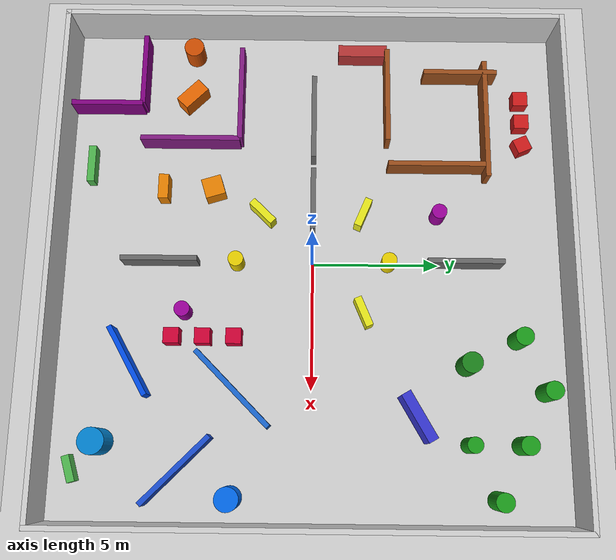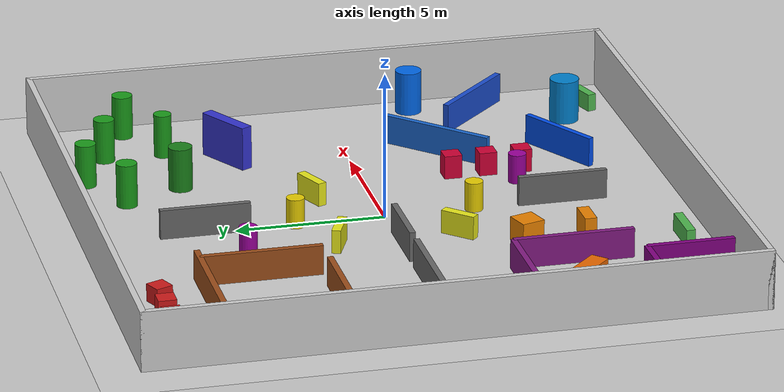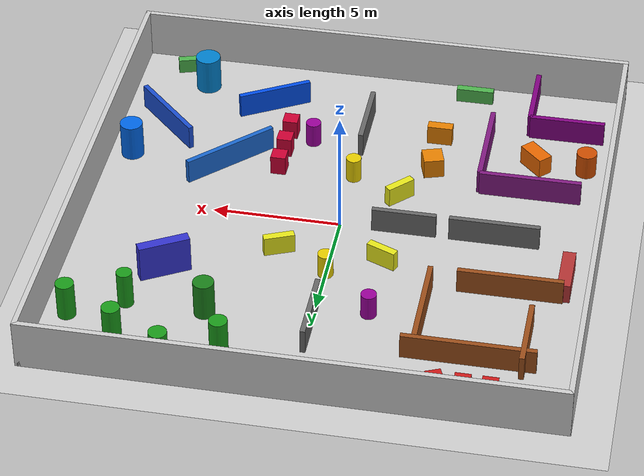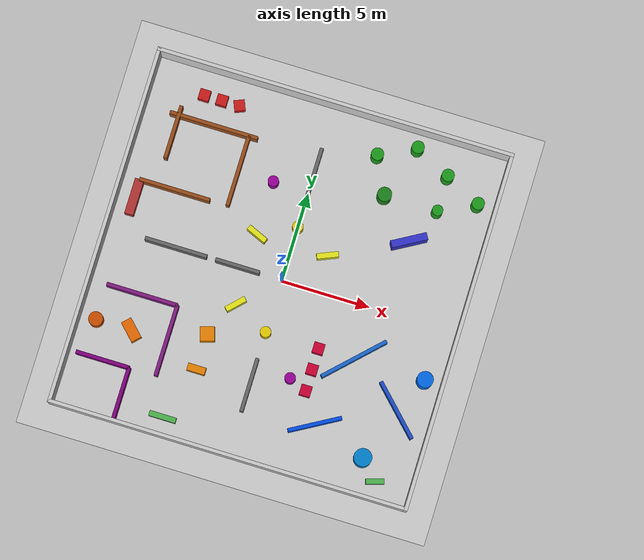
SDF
<?xml version="1.0"?>
<sdf version="1.6">
  <world name="big_obstacle_world">

    <!-- ===== LIGHTING ===== -->
    <light name="sun" type="directional">
      <cast_shadows>true</cast_shadows>
      <pose>0 0 10 0 0 0</pose>
      <diffuse>0.8 0.8 0.8 1</diffuse>
      <specular>0.2 0.2 0.2 1</specular>
      <direction>-0.5 0.1 -0.9</direction>
    </light>

    <include><uri>model://ground_plane</uri></include>

    <!-- =====================================================
         BOUNDARY WALLS  (20m × 20m arena)
         ===================================================== -->

    <!-- North wall -->
    <model name="wall_north"><static>true</static>
      <pose>0 10 1.0 0 0 0</pose>
      <link name="link">
        <collision name="c"><geometry><box><size>20.2 0.2 2.0</size></box></geometry></collision>
        <visual name="v"><geometry><box><size>20.2 0.2 2.0</size></box></geometry>
          <material><ambient>0.8 0.8 0.8 1</ambient><diffuse>0.8 0.8 0.8 1</diffuse></material>
        </visual>
      </link>
    </model>

    <!-- South wall -->
    <model name="wall_south"><static>true</static>
      <pose>0 -10 1.0 0 0 0</pose>
      <link name="link">
        <collision name="c"><geometry><box><size>20.2 0.2 2.0</size></box></geometry></collision>
        <visual name="v"><geometry><box><size>20.2 0.2 2.0</size></box></geometry>
          <material><ambient>0.8 0.8 0.8 1</ambient><diffuse>0.8 0.8 0.8 1</diffuse></material>
        </visual>
      </link>
    </model>

    <!-- East wall -->
    <model name="wall_east"><static>true</static>
      <pose>10 0 1.0 0 0 0</pose>
      <link name="link">
        <collision name="c"><geometry><box><size>0.2 20.2 2.0</size></box></geometry></collision>
        <visual name="v"><geometry><box><size>0.2 20.2 2.0</size></box></geometry>
          <material><ambient>0.8 0.8 0.8 1</ambient><diffuse>0.8 0.8 0.8 1</diffuse></material>
        </visual>
      </link>
    </model>

    <!-- West wall -->
    <model name="wall_west"><static>true</static>
      <pose>-10 0 1.0 0 0 0</pose>
      <link name="link">
        <collision name="c"><geometry><box><size>0.2 20.2 2.0</size></box></geometry></collision>
        <visual name="v"><geometry><box><size>0.2 20.2 2.0</size></box></geometry>
          <material><ambient>0.8 0.8 0.8 1</ambient><diffuse>0.8 0.8 0.8 1</diffuse></material>
        </visual>
      </link>
    </model>

    <!-- Horizontal corridor wall 1 -->
    <model name="corridor_h1"><static>true</static>
      <pose>-6 7 0.5 0 0 0</pose>
      <link name="link">
        <collision name="c"><geometry><box><size>5.0 0.2 1.0</size></box></geometry></collision>
        <visual name="v"><geometry><box><size>5.0 0.2 1.0</size></box></geometry>
          <material><ambient>0.6 0.3 0.1 1</ambient><diffuse>0.6 0.3 0.1 1</diffuse></material>
        </visual>
      </link>
    </model>

    <!-- Vertical corridor wall 1 -->
    <model name="corridor_v1"><static>true</static>
      <pose>-4 5 0.5 0 0 0</pose>
      <link name="link">
        <collision name="c"><geometry><box><size>0.2 4.0 1.0</size></box></geometry></collision>
        <visual name="v"><geometry><box><size>0.2 4.0 1.0</size></box></geometry>
          <material><ambient>0.6 0.3 0.1 1</ambient><diffuse>0.6 0.3 0.1 1</diffuse></material>
        </visual>
      </link>
    </model>

    <!-- Horizontal corridor wall 2 -->
    <model name="corridor_h2"><static>true</static>
      <pose>-7 3 0.5 0 0 0</pose>
      <link name="link">
        <collision name="c"><geometry><box><size>4.0 0.2 1.0</size></box></geometry></collision>
        <visual name="v"><geometry><box><size>4.0 0.2 1.0</size></box></geometry>
          <material><ambient>0.6 0.3 0.1 1</ambient><diffuse>0.6 0.3 0.1 1</diffuse></material>
        </visual>
      </link>
    </model>

    <!-- Vertical corridor wall 2 -->
    <model name="corridor_v2"><static>true</static>
      <pose>-8 6 0.5 0 0 0</pose>
      <link name="link">
        <collision name="c"><geometry><box><size>0.2 3.0 1.0</size></box></geometry></collision>
        <visual name="v"><geometry><box><size>0.2 3.0 1.0</size></box></geometry>
          <material><ambient>0.6 0.3 0.1 1</ambient><diffuse>0.6 0.3 0.1 1</diffuse></material>
        </visual>
      </link>
    </model>

    <!-- Small box cluster top-left -->
    <model name="box_tl1"><static>true</static>
      <pose>-7 8.5 0.3 0 0 0</pose>
      <link name="link">
        <collision name="c"><geometry><box><size>0.6 0.6 0.6</size></box></geometry></collision>
        <visual name="v"><geometry><box><size>0.6 0.6 0.6</size></box></geometry>
          <material><ambient>0.8 0.1 0.1 1</ambient><diffuse>0.8 0.1 0.1 1</diffuse></material>
        </visual>
      </link>
    </model>

    <model name="box_tl2"><static>true</static>
      <pose>-6 8.5 0.3 0 0 0</pose>
      <link name="link">
        <collision name="c"><geometry><box><size>0.6 0.6 0.6</size></box></geometry></collision>
        <visual name="v"><geometry><box><size>0.6 0.6 0.6</size></box></geometry>
          <material><ambient>0.8 0.1 0.1 1</ambient><diffuse>0.8 0.1 0.1 1</diffuse></material>
        </visual>
      </link>
    </model>

    <model name="box_tl3"><static>true</static>
      <pose>-5 8.5 0.3 0 0 0.4</pose>
      <link name="link">
        <collision name="c"><geometry><box><size>0.6 0.6 0.6</size></box></geometry></collision>
        <visual name="v"><geometry><box><size>0.6 0.6 0.6</size></box></geometry>
          <material><ambient>0.8 0.1 0.1 1</ambient><diffuse>0.8 0.1 0.1 1</diffuse></material>
        </visual>
      </link>
    </model>

    <!-- =====================================================
         ZONE B — TOP RIGHT  (2 to 10, 2 to 10)
         Cylinder forest
         ===================================================== -->

    <model name="cyl_tr1"><static>true</static>
      <pose>3 8 0.75 0 0 0</pose>
      <link name="link">
        <collision name="c"><geometry><cylinder><radius>0.35</radius><length>1.5</length></cylinder></geometry></collision>
        <visual name="v"><geometry><cylinder><radius>0.35</radius><length>1.5</length></cylinder></geometry>
          <material><ambient>0.1 0.6 0.1 1</ambient><diffuse>0.1 0.6 0.1 1</diffuse></material>
        </visual>
      </link>
    </model>

    <model name="cyl_tr2"><static>true</static>
      <pose>5 9 0.75 0 0 0</pose>
      <link name="link">
        <collision name="c"><geometry><cylinder><radius>0.35</radius><length>1.5</length></cylinder></geometry></collision>
        <visual name="v"><geometry><cylinder><radius>0.35</radius><length>1.5</length></cylinder></geometry>
          <material><ambient>0.1 0.6 0.1 1</ambient><diffuse>0.1 0.6 0.1 1</diffuse></material>
        </visual>
      </link>
    </model>

    <model name="cyl_tr3"><static>true</static>
      <pose>7 8 0.75 0 0 0</pose>
      <link name="link">
        <collision name="c"><geometry><cylinder><radius>0.35</radius><length>1.5</length></cylinder></geometry></collision>
        <visual name="v"><geometry><cylinder><radius>0.35</radius><length>1.5</length></cylinder></geometry>
          <material><ambient>0.1 0.6 0.1 1</ambient><diffuse>0.1 0.6 0.1 1</diffuse></material>
        </visual>
      </link>
    </model>

    <model name="cyl_tr4"><static>true</static>
      <pose>4 6 0.75 0 0 0</pose>
      <link name="link">
        <collision name="c"><geometry><cylinder><radius>0.40</radius><length>1.5</length></cylinder></geometry></collision>
        <visual name="v"><geometry><cylinder><radius>0.40</radius><length>1.5</length></cylinder></geometry>
          <material><ambient>0.1 0.5 0.1 1</ambient><diffuse>0.1 0.5 0.1 1</diffuse></material>
        </visual>
      </link>
    </model>

    <model name="cyl_tr5"><static>true</static>
      <pose>7 6 0.75 0 0 0</pose>
      <link name="link">
        <collision name="c"><geometry><cylinder><radius>0.30</radius><length>1.5</length></cylinder></geometry></collision>
        <visual name="v"><geometry><cylinder><radius>0.30</radius><length>1.5</length></cylinder></geometry>
          <material><ambient>0.1 0.6 0.1 1</ambient><diffuse>0.1 0.6 0.1 1</diffuse></material>
        </visual>
      </link>
    </model>

    <model name="cyl_tr6"><static>true</static>
      <pose>9 7 0.75 0 0 0</pose>
      <link name="link">
        <collision name="c"><geometry><cylinder><radius>0.35</radius><length>1.5</length></cylinder></geometry></collision>
        <visual name="v"><geometry><cylinder><radius>0.35</radius><length>1.5</length></cylinder></geometry>
          <material><ambient>0.1 0.6 0.1 1</ambient><diffuse>0.1 0.6 0.1 1</diffuse></material>
        </visual>
      </link>
    </model>

    <!-- Large box top-right -->
    <model name="bigbox_tr"><static>true</static>
      <pose>6 4 0.75 0 0 0.523</pose>
      <link name="link">
        <collision name="c"><geometry><box><size>2.0 0.4 1.5</size></box></geometry></collision>
        <visual name="v"><geometry><box><size>2.0 0.4 1.5</size></box></geometry>
          <material><ambient>0.2 0.2 0.8 1</ambient><diffuse>0.2 0.2 0.8 1</diffuse></material>
        </visual>
      </link>
    </model>

    <!-- L-shape arm 1 -->
    <model name="lwall_1"><static>true</static>
      <pose>-7 -3 0.5 0 0 0</pose>
      <link name="link">
        <collision name="c"><geometry><box><size>4.0 0.2 1.0</size></box></geometry></collision>
        <visual name="v"><geometry><box><size>4.0 0.2 1.0</size></box></geometry>
          <material><ambient>0.5 0.1 0.5 1</ambient><diffuse>0.5 0.1 0.5 1</diffuse></material>
        </visual>
      </link>
    </model>

    <!-- L-shape arm 2 -->
    <model name="lwall_2"><static>true</static>
      <pose>-5 -5 0.5 0 0 0</pose>
      <link name="link">
        <collision name="c"><geometry><box><size>0.2 4.0 1.0</size></box></geometry></collision>
        <visual name="v"><geometry><box><size>0.2 4.0 1.0</size></box></geometry>
          <material><ambient>0.5 0.1 0.5 1</ambient><diffuse>0.5 0.1 0.5 1</diffuse></material>
        </visual>
      </link>
    </model>

    <!-- Another L-shape -->
    <model name="lwall_3"><static>true</static>
      <pose>-8 -7 0.5 0 0 0</pose>
      <link name="link">
        <collision name="c"><geometry><box><size>3.0 0.2 1.0</size></box></geometry></collision>
        <visual name="v"><geometry><box><size>3.0 0.2 1.0</size></box></geometry>
          <material><ambient>0.5 0.0 0.5 1</ambient><diffuse>0.5 0.0 0.5 1</diffuse></material>
        </visual>
      </link>
    </model>

    <model name="lwall_4"><static>true</static>
      <pose>-6.5 -8.5 0.5 0 0 0</pose>
      <link name="link">
        <collision name="c"><geometry><box><size>0.2 3.0 1.0</size></box></geometry></collision>
        <visual name="v"><geometry><box><size>0.2 3.0 1.0</size></box></geometry>
          <material><ambient>0.5 0.0 0.5 1</ambient><diffuse>0.5 0.0 0.5 1</diffuse></material>
        </visual>
      </link>
    </model>

    <!-- Scattered boxes bottom-left -->
    <model name="box_bl1"><static>true</static>
      <pose>-3 -4 0.4 0 0 0.3</pose>
      <link name="link">
        <collision name="c"><geometry><box><size>0.8 0.8 0.8</size></box></geometry></collision>
        <visual name="v"><geometry><box><size>0.8 0.8 0.8</size></box></geometry>
          <material><ambient>0.9 0.5 0.0 1</ambient><diffuse>0.9 0.5 0.0 1</diffuse></material>
        </visual>
      </link>
    </model>

    <model name="box_bl2"><static>true</static>
      <pose>-3 -6 0.4 0 0 0</pose>
      <link name="link">
        <collision name="c"><geometry><box><size>1.0 0.4 0.8</size></box></geometry></collision>
        <visual name="v"><geometry><box><size>1.0 0.4 0.8</size></box></geometry>
          <material><ambient>0.9 0.5 0.0 1</ambient><diffuse>0.9 0.5 0.0 1</diffuse></material>
        </visual>
      </link>
    </model>

    <model name="box_bl3"><static>true</static>
      <pose>-7 -5 0.4 0 0 0.785</pose>
      <link name="link">
        <collision name="c"><geometry><box><size>0.6 1.2 0.8</size></box></geometry></collision>
        <visual name="v"><geometry><box><size>0.6 1.2 0.8</size></box></geometry>
          <material><ambient>0.9 0.4 0.0 1</ambient><diffuse>0.9 0.4 0.0 1</diffuse></material>
        </visual>
      </link>
    </model>

    <model name="cyl_bl1"><static>true</static>
      <pose>-9 -5 0.5 0 0 0</pose>
      <link name="link">
        <collision name="c"><geometry><cylinder><radius>0.4</radius><length>1.0</length></cylinder></geometry></collision>
        <visual name="v"><geometry><cylinder><radius>0.4</radius><length>1.0</length></cylinder></geometry>
          <material><ambient>0.8 0.3 0.0 1</ambient><diffuse>0.8 0.3 0.0 1</diffuse></material>
        </visual>
      </link>
    </model>

    <!-- =====================================================
         ZONE D — BOTTOM RIGHT  (2 to 10, -10 to -2)
         Diagonal wall maze
         ===================================================== -->

    <!-- Diagonal wall 1 -->
    <model name="diag_1"><static>true</static>
      <pose>5 -3 0.5 0 0 0.785</pose>
      <link name="link">
        <collision name="c"><geometry><box><size>4.0 0.2 1.0</size></box></geometry></collision>
        <visual name="v"><geometry><box><size>4.0 0.2 1.0</size></box></geometry>
          <material><ambient>0.1 0.4 0.8 1</ambient><diffuse>0.1 0.4 0.8 1</diffuse></material>
        </visual>
      </link>
    </model>

    <!-- Diagonal wall 2 -->
    <model name="diag_2"><static>true</static>
      <pose>8 -5 0.5 0 0 2.356</pose>
      <link name="link">
        <collision name="c"><geometry><box><size>3.5 0.2 1.0</size></box></geometry></collision>
        <visual name="v"><geometry><box><size>3.5 0.2 1.0</size></box></geometry>
          <material><ambient>0.1 0.3 0.8 1</ambient><diffuse>0.1 0.3 0.8 1</diffuse></material>
        </visual>
      </link>
    </model>

    <!-- Diagonal wall 3 -->
    <model name="diag_3"><static>true</static>
      <pose>4 -7 0.5 0 0 0.523</pose>
      <link name="link">
        <collision name="c"><geometry><box><size>3.0 0.2 1.0</size></box></geometry></collision>
        <visual name="v"><geometry><box><size>3.0 0.2 1.0</size></box></geometry>
          <material><ambient>0.0 0.3 0.9 1</ambient><diffuse>0.0 0.3 0.9 1</diffuse></material>
        </visual>
      </link>
    </model>

    <!-- Box cluster bottom-right -->
    <model name="box_br1"><static>true</static>
      <pose>3 -3 0.4 0 0 0</pose>
      <link name="link">
        <collision name="c"><geometry><box><size>0.6 0.6 0.8</size></box></geometry></collision>
        <visual name="v"><geometry><box><size>0.6 0.6 0.8</size></box></geometry>
          <material><ambient>0.8 0.0 0.2 1</ambient><diffuse>0.8 0.0 0.2 1</diffuse></material>
        </visual>
      </link>
    </model>

    <model name="box_br2"><static>true</static>
      <pose>3 -4.2 0.4 0 0 0</pose>
      <link name="link">
        <collision name="c"><geometry><box><size>0.6 0.6 0.8</size></box></geometry></collision>
        <visual name="v"><geometry><box><size>0.6 0.6 0.8</size></box></geometry>
          <material><ambient>0.8 0.0 0.2 1</ambient><diffuse>0.8 0.0 0.2 1</diffuse></material>
        </visual>
      </link>
    </model>

    <model name="box_br3"><static>true</static>
      <pose>3 -5.4 0.4 0 0 0</pose>
      <link name="link">
        <collision name="c"><geometry><box><size>0.6 0.6 0.8</size></box></geometry></collision>
        <visual name="v"><geometry><box><size>0.6 0.6 0.8</size></box></geometry>
          <material><ambient>0.8 0.0 0.2 1</ambient><diffuse>0.8 0.0 0.2 1</diffuse></material>
        </visual>
      </link>
    </model>

    <model name="cyl_br1"><static>true</static>
      <pose>7 -8 0.75 0 0 0</pose>
      <link name="link">
        <collision name="c"><geometry><cylinder><radius>0.5</radius><length>1.5</length></cylinder></geometry></collision>
        <visual name="v"><geometry><cylinder><radius>0.5</radius><length>1.5</length></cylinder></geometry>
          <material><ambient>0.0 0.5 0.8 1</ambient><diffuse>0.0 0.5 0.8 1</diffuse></material>
        </visual>
      </link>
    </model>

    <model name="cyl_br2"><static>true</static>
      <pose>9 -3 0.75 0 0 0</pose>
      <link name="link">
        <collision name="c"><geometry><cylinder><radius>0.45</radius><length>1.5</length></cylinder></geometry></collision>
        <visual name="v"><geometry><cylinder><radius>0.45</radius><length>1.5</length></cylinder></geometry>
          <material><ambient>0.0 0.4 0.9 1</ambient><diffuse>0.0 0.4 0.9 1</diffuse></material>
        </visual>
      </link>
    </model>

    <!-- Ring of obstacles around centre — leave gaps for robot to get out -->

    <model name="centre_box1"><static>true</static>
      <pose>2 2 0.4 0 0 0.4</pose>
      <link name="link">
        <collision name="c"><geometry><box><size>1.2 0.3 0.8</size></box></geometry></collision>
        <visual name="v"><geometry><box><size>1.2 0.3 0.8</size></box></geometry>
          <material><ambient>0.9 0.9 0.1 1</ambient><diffuse>0.9 0.9 0.1 1</diffuse></material>
        </visual>
      </link>
    </model>

    <model name="centre_box2"><static>true</static>
      <pose>-2 2 0.4 0 0 2.74</pose>
      <link name="link">
        <collision name="c"><geometry><box><size>1.2 0.3 0.8</size></box></geometry></collision>
        <visual name="v"><geometry><box><size>1.2 0.3 0.8</size></box></geometry>
          <material><ambient>0.9 0.9 0.1 1</ambient><diffuse>0.9 0.9 0.1 1</diffuse></material>
        </visual>
      </link>
    </model>

    <model name="centre_box3"><static>true</static>
      <pose>-2 -2 0.4 0 0 0.8</pose>
      <link name="link">
        <collision name="c"><geometry><box><size>1.2 0.3 0.8</size></box></geometry></collision>
        <visual name="v"><geometry><box><size>1.2 0.3 0.8</size></box></geometry>
          <material><ambient>0.9 0.9 0.1 1</ambient><diffuse>0.9 0.9 0.1 1</diffuse></material>
        </visual>
      </link>
    </model>

    <model name="centre_cyl1"><static>true</static>
      <pose>0 3 0.5 0 0 0</pose>
      <link name="link">
        <collision name="c"><geometry><cylinder><radius>0.3</radius><length>1.0</length></cylinder></geometry></collision>
        <visual name="v"><geometry><cylinder><radius>0.3</radius><length>1.0</length></cylinder></geometry>
          <material><ambient>0.9 0.8 0.0 1</ambient><diffuse>0.9 0.8 0.0 1</diffuse></material>
        </visual>
      </link>
    </model>

    <model name="centre_cyl2"><static>true</static>
      <pose>0 -3 0.5 0 0 0</pose>
      <link name="link">
        <collision name="c"><geometry><cylinder><radius>0.3</radius><length>1.0</length></cylinder></geometry></collision>
        <visual name="v"><geometry><cylinder><radius>0.3</radius><length>1.0</length></cylinder></geometry>
          <material><ambient>0.9 0.8 0.0 1</ambient><diffuse>0.9 0.8 0.0 1</diffuse></material>
        </visual>
      </link>
    </model>

    <!-- =====================================================
         ZONE F — MID CORRIDORS  (crossing paths)
         ===================================================== -->

    <!-- Horizontal divider (with gap in middle for passage) -->
    <model name="div_h1"><static>true</static>
      <pose>-6 0 0.5 0 0 0</pose>
      <link name="link">
        <collision name="c"><geometry><box><size>3.5 0.2 1.0</size></box></geometry></collision>
        <visual name="v"><geometry><box><size>3.5 0.2 1.0</size></box></geometry>
          <material><ambient>0.4 0.4 0.4 1</ambient><diffuse>0.4 0.4 0.4 1</diffuse></material>
        </visual>
      </link>
    </model>

    <model name="div_h2"><static>true</static>
      <pose>-2.5 0 0.5 0 0 0</pose>
      <link name="link">
        <collision name="c"><geometry><box><size>2.5 0.2 1.0</size></box></geometry></collision>
        <visual name="v"><geometry><box><size>2.5 0.2 1.0</size></box></geometry>
          <material><ambient>0.4 0.4 0.4 1</ambient><diffuse>0.4 0.4 0.4 1</diffuse></material>
        </visual>
      </link>
    </model>

    <!-- Vertical divider (with gap) -->
    <model name="div_v1"><static>true</static>
      <pose>0 6 0.5 0 0 0</pose>
      <link name="link">
        <collision name="c"><geometry><box><size>0.2 3.0 1.0</size></box></geometry></collision>
        <visual name="v"><geometry><box><size>0.2 3.0 1.0</size></box></geometry>
          <material><ambient>0.4 0.4 0.4 1</ambient><diffuse>0.4 0.4 0.4 1</diffuse></material>
        </visual>
      </link>
    </model>

    <model name="div_v2"><static>true</static>
      <pose>0 -6 0.5 0 0 0</pose>
      <link name="link">
        <collision name="c"><geometry><box><size>0.2 3.0 1.0</size></box></geometry></collision>
        <visual name="v"><geometry><box><size>0.2 3.0 1.0</size></box></geometry>
          <material><ambient>0.4 0.4 0.4 1</ambient><diffuse>0.4 0.4 0.4 1</diffuse></material>
        </visual>
      </link>
    </model>

    <!-- Extra scattered cylinders across the map -->
    <model name="rand_cyl1"><static>true</static>
      <pose>-2 5 0.5 0 0 0</pose>
      <link name="link">
        <collision name="c"><geometry><cylinder><radius>0.3</radius><length>1.0</length></cylinder></geometry></collision>
        <visual name="v"><geometry><cylinder><radius>0.3</radius><length>1.0</length></cylinder></geometry>
          <material><ambient>0.6 0.0 0.6 1</ambient><diffuse>0.6 0.0 0.6 1</diffuse></material>
        </visual>
      </link>
    </model>

    <model name="rand_cyl2"><static>true</static>
      <pose>2 -5 0.5 0 0 0</pose>
      <link name="link">
        <collision name="c"><geometry><cylinder><radius>0.3</radius><length>1.0</length></cylinder></geometry></collision>
        <visual name="v"><geometry><cylinder><radius>0.3</radius><length>1.0</length></cylinder></geometry>
          <material><ambient>0.6 0.0 0.6 1</ambient><diffuse>0.6 0.0 0.6 1</diffuse></material>
        </visual>
      </link>
    </model>

    <model name="rand_box1"><static>true</static>
      <pose>-4 -9 0.3 0 0 0</pose>
      <link name="link">
        <collision name="c"><geometry><box><size>1.5 0.3 0.6</size></box></geometry></collision>
        <visual name="v"><geometry><box><size>1.5 0.3 0.6</size></box></geometry>
          <material><ambient>0.3 0.7 0.3 1</ambient><diffuse>0.3 0.7 0.3 1</diffuse></material>
        </visual>
      </link>
    </model>

    <model name="rand_box2"><static>true</static>
      <pose>8 -9 0.3 0 0 0.3</pose>
      <link name="link">
        <collision name="c"><geometry><box><size>1.0 0.3 0.6</size></box></geometry></collision>
        <visual name="v"><geometry><box><size>1.0 0.3 0.6</size></box></geometry>
          <material><ambient>0.3 0.7 0.3 1</ambient><diffuse>0.3 0.7 0.3 1</diffuse></material>
        </visual>
      </link>
    </model>

    <model name="rand_box3"><static>true</static>
      <pose>-9 2 0.4 0 0 0</pose>
      <link name="link">
        <collision name="c"><geometry><box><size>0.5 2.0 0.8</size></box></geometry></collision>
        <visual name="v"><geometry><box><size>0.5 2.0 0.8</size></box></geometry>
          <material><ambient>0.7 0.2 0.2 1</ambient><diffuse>0.7 0.2 0.2 1</diffuse></material>
        </visual>
      </link>
    </model>

  </world>
</sdf>
